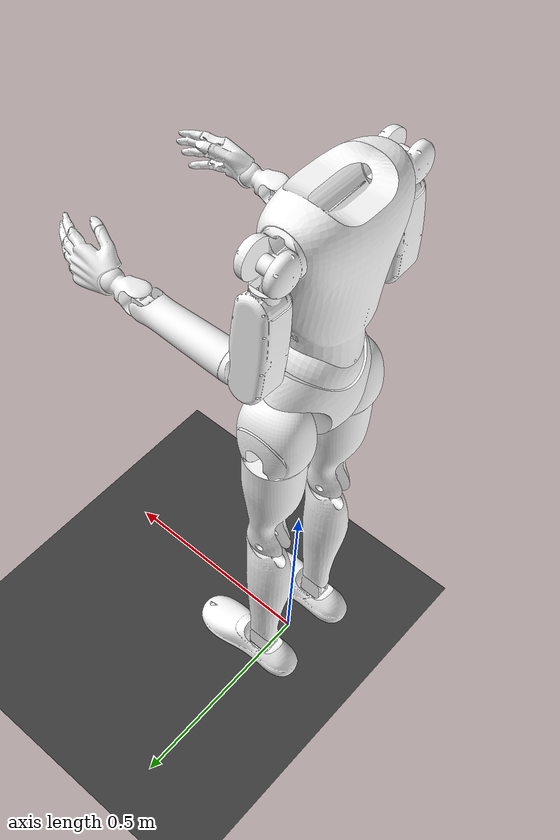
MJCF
<mujoco model="x3">
  <compiler angle="radian" meshdir="./meshes/"/>
  <statistic meansize="0.177939" extent="1.9618" center="0.0465088 1.93584e-06 -0.21519"/>
  <default>
    <joint damping="0.1" armature="0.01" frictionloss="0.1"/>
  </default>
  <asset>
    <texture type="skybox" builtin="gradient" width="128" height="128" rgb1="0.4 0.6 0.8" rgb2="0 0 0"/>
    <texture name="plane" type="2d" builtin="checker" rgb1="0.2 0.2 0.2" rgb2="0.3 0.3 0.3" width="512"
              height="512"/>
    <material name="plane" reflectance="0.0" texture="plane" texrepeat="1 1" texuniform="true"/>
    <mesh name="pelvis" file="pelvis.STL"/>
    <mesh name="left_hip_pitch_link" file="left_hip_pitch_link.STL"/>
    <mesh name="left_hip_roll_link" file="left_hip_roll_link.STL"/>
    <mesh name="left_hip_yaw_link" file="left_hip_yaw_link.STL"/>
    <mesh name="left_knee_link" file="left_knee_link.STL"/>
    <mesh name="left_ankle_pitch_link" file="left_ankle_pitch_link.STL"/>
    <mesh name="left_ankle_roll_link" file="left_ankle_roll_link.STL"/>
    <mesh name="right_hip_pitch_link" file="right_hip_pitch_link.STL"/>
    <mesh name="right_hip_roll_link" file="right_hip_roll_link.STL"/>
    <mesh name="right_hip_yaw_link" file="right_hip_yaw_link.STL"/>
    <mesh name="right_knee_link" file="right_knee_link.STL"/>
    <mesh name="right_ankle_pitch_link" file="right_ankle_pitch_link.STL"/>
    <mesh name="right_ankle_roll_link" file="right_ankle_roll_link.STL"/>
    <mesh name="waist_roll_link" file="waist_roll_link.STL"/>
    <mesh name="torso_link" file="torso_link.STL"/>
    <mesh name="left_shoulder_pitch_link" file="left_shoulder_pitch_link.STL"/>
    <mesh name="left_shoulder_roll_link" file="left_shoulder_roll_link.STL"/>
    <mesh name="left_shoulder_yaw_link" file="left_shoulder_yaw_link.STL"/>
    <mesh name="left_elbow_link" file="left_elbow_link.STL"/>
    <mesh name="left_wrist_roll_link" file="left_wrist_roll_link.STL"/>
    <mesh name="left_wrist_pitch_link" file="left_wrist_pitch_link.STL"/>
    <mesh name="left_wrist_yaw_link" file="left_wrist_yaw_link.STL"/>
    <mesh name="right_shoulder_pitch_link" file="right_shoulder_pitch_link.STL"/>
    <mesh name="right_shoulder_roll_link" file="right_shoulder_roll_link.STL"/>
    <mesh name="right_shoulder_yaw_link" file="right_shoulder_yaw_link.STL"/>
    <mesh name="right_elbow_link" file="right_elbow_link.STL"/>
    <mesh name="right_wrist_roll_link" file="right_wrist_roll_link.STL"/>
    <mesh name="right_wrist_pitch_link" file="right_wrist_pitch_link.STL"/>
    <mesh name="right_wrist_yaw_link" file="right_wrist_yaw_link.STL"/>
  </asset>

  <worldbody>
    <geom name="floor" pos="0.001 0 0" size="100 10 .125" type="plane" material="plane" condim="3"
          conaffinity="15" friction="0.6 0.6 0.001"/>
    <light mode="trackcom" pos="0 0 5" dir="0 0 -1"/>
    <body name="pelvis" pos="0 0 0.893">
      <inertial pos="0 0 0.115776" quat="0.706889 2.91347e-06 -1.28611e-05 0.707324" mass="3.65" diaginertia="0.0190501 0.0184655 0.0127755"/>
      <joint name="floating_base_joint" type="free" limited="false" actuatorfrclimited="false"/>
      <geom type="mesh" contype="0" conaffinity="0" group="1" density="0" rgba="1 1 1 1" mesh="pelvis"/>
      <geom type="mesh" rgba="1 1 1 1" mesh="pelvis"/>
      <body name="left_hip_pitch_link" pos="0 0.056998 0.044">
        <inertial pos="-7.014e-05 0.0416974 -0.0205686" quat="0.707107 0 0 0.707107" mass="2.167" diaginertia="0.00797221 0.00622358 0.00524355"/>
        <joint name="left_hip_pitch_joint" pos="0 0 0" axis="0 1 0" range="-2.3562 2.3562" actuatorfrcrange="-75 75"/>
        <geom type="mesh" contype="0" conaffinity="0" group="1" density="0" rgba="1 1 1 1" mesh="left_hip_pitch_link"/>
        <geom type="mesh" rgba="1 1 1 1" mesh="left_hip_pitch_link"/>
        <body name="left_hip_roll_link" pos="0 0.040491 -0.044">
          <inertial pos="0 0 -0.0331391" quat="0.5 0.5 -0.5 0.5" mass="0.05" diaginertia="5.63e-06 4.48e-06 4.48e-06"/>
          <joint name="left_hip_roll_joint" pos="0 0 0" axis="1 0 0" range="-0.5236 1.6581" actuatorfrcrange="-140.2 140.2"/>
          <geom type="mesh" contype="0" conaffinity="0" group="1" density="0" rgba="1 1 1 1" mesh="left_hip_roll_link"/>
          <geom type="mesh" rgba="1 1 1 1" mesh="left_hip_roll_link"/>
          <body name="left_hip_yaw_link">
            <inertial pos="0.00240937 0 -0.17118" quat="0.713733 0.0149082 0.0152113 0.700094" mass="2.4" diaginertia="0.0159371 0.015934 0.00374552"/>
            <joint name="left_hip_yaw_joint" pos="0 0 0" axis="0 0 1" range="-1.9199 3.1416" actuatorfrcrange="-88.2 88.2"/>
            <geom type="mesh" contype="0" conaffinity="0" group="1" density="0" rgba="1 1 1 1" mesh="left_hip_yaw_link"/>
            <body name="left_knee_link" pos="0 0 -0.339">
              <inertial pos="0.00029886 0 -0.210705" quat="0.707071 -0.00708323 -0.00708323 0.707071" mass="1.5" diaginertia="0.0162746 0.0159095 0.00146519"/>
              <joint name="left_knee_joint" pos="0 0 0" axis="0 1 0" range="0 2.3562" actuatorfrcrange="-140.2 140.2"/>
              <geom type="mesh" contype="0" conaffinity="0" group="1" density="0" rgba="1 1 1 1" mesh="left_knee_link"/>
              <geom type="mesh" rgba="1 1 1 1" mesh="left_knee_link"/>
              <body name="left_ankle_pitch_link" pos="0 0 -0.45">
                <inertial pos="0.00046495 0 -0.0356267" quat="0.707107 0 0 0.707107" mass="0.5" diaginertia="0.00048777 0.00043979 0.00019678"/>
                <joint name="left_ankle_pitch_joint" pos="0 0 0" axis="0 1 0" range="-1.0472 1.0472" actuatorfrcrange="-50.6 50.6"/>
                <geom type="mesh" contype="0" conaffinity="0" group="1" density="0" rgba="1 1 1 1" mesh="left_ankle_pitch_link"/>
                <geom type="mesh" rgba="1 1 1 1" mesh="left_ankle_pitch_link"/>
                <body name="left_ankle_roll_link" pos="0 0 -0.058">
                  <inertial pos="0.0527895 -8e-06 -0.0124553" quat="0.000151237 0.694503 0.000124693 0.719489" mass="1" diaginertia="0.00650771 0.00629204 0.000969317"/>
                  <joint name="left_ankle_roll_joint" pos="0 0 0" axis="1 0 0" range="-0.5236 0.5236" actuatorfrcrange="-50 50"/>
                  <geom type="mesh" contype="0" conaffinity="0" group="1" density="0" rgba="1 1 1 1" mesh="left_ankle_roll_link"/>
                  <geom size="0.005" pos="-0.085 0 -0.036" rgba="1 1 1 1"/>
                  <geom size="0.005" pos="-0.035 0.034 -0.036" rgba="1 1 1 1"/>
                  <geom size="0.005" pos="-0.035 -0.034 -0.036" rgba="1 1 1 1"/>
                  <geom size="0.005" pos="0.12 0.045 -0.036" rgba="1 1 1 1"/>
                  <geom size="0.005" pos="0.12 -0.045 -0.036" rgba="1 1 1 1"/>
                  <geom size="0.005" pos="0.18 0 -0.036" rgba="1 1 1 1"/>
                  <geom size="0.01 0.05" pos="0.08 -0.026 -0.024" quat="0.707105 0 0.707108 0" type="cylinder" rgba="1 1 1 1"/>
                  <geom size="0.01 0.1" pos="0.044 -0.018 -0.024" quat="0.707105 0 -0.707108 0" type="cylinder" rgba="1 1 1 1"/>
                  <geom size="0.01 0.12" pos="0.046 -0.01 -0.024" quat="0.707105 0 -0.707108 0" type="cylinder" rgba="1 1 1 1"/>
                  <geom size="0.01 0.125" pos="0.048 0 -0.024" quat="0.707105 0 -0.707108 0" type="cylinder" rgba="1 1 1 1"/>
                  <geom size="0.01 0.12" pos="0.046 0.01 -0.024" quat="0.707105 0 -0.707108 0" type="cylinder" rgba="1 1 1 1"/>
                  <geom size="0.01 0.1" pos="0.044 0.018 -0.024" quat="0.707105 0 -0.707108 0" type="cylinder" rgba="1 1 1 1"/>
                  <geom size="0.01 0.05" pos="0.08 0.026 -0.024" quat="0.707105 0 0.707108 0" type="cylinder" rgba="1 1 1 1"/>
                </body>
              </body>
            </body>
          </body>
        </body>
      </body>
      <body name="right_hip_pitch_link" pos="0 -0.056998 0.044">
        <inertial pos="-7.014e-05 -0.0416974 -0.0205686" quat="0.707107 0 0 0.707107" mass="2.167" diaginertia="0.00797221 0.00622358 0.00524355"/>
        <joint name="right_hip_pitch_joint" pos="0 0 0" axis="0 1 0" range="-2.3562 2.3562" actuatorfrcrange="-88 88"/>
        <geom type="mesh" contype="0" conaffinity="0" group="1" density="0" rgba="1 1 1 1" mesh="right_hip_pitch_link"/>
        <geom type="mesh" rgba="1 1 1 1" mesh="right_hip_pitch_link"/>
        <body name="right_hip_roll_link" pos="0 -0.040491 -0.044">
          <inertial pos="0 0 -0.0331391" quat="0.5 0.5 -0.5 0.5" mass="0.05" diaginertia="5.63e-06 4.48e-06 4.48e-06"/>
          <joint name="right_hip_roll_joint" pos="0 0 0" axis="1 0 0" range="-1.6581 0.5236" actuatorfrcrange="-140.2 140.2"/>
          <geom type="mesh" contype="0" conaffinity="0" group="1" density="0" rgba="1 1 1 1" mesh="right_hip_roll_link"/>
          <geom type="mesh" rgba="1 1 1 1" mesh="right_hip_roll_link"/>
          <body name="right_hip_yaw_link">
            <inertial pos="0.00240937 0 -0.17118" quat="0.713733 0.0149082 0.0152113 0.700094" mass="2.4" diaginertia="0.0159371 0.015934 0.00374552"/>
            <joint name="right_hip_yaw_joint" pos="0 0 0" axis="0 0 1" range="-3.1416 1.9199" actuatorfrcrange="-88.2 88.2"/>
            <geom type="mesh" contype="0" conaffinity="0" group="1" density="0" rgba="1 1 1 1" mesh="right_hip_yaw_link"/>
            <body name="right_knee_link" pos="0 0 -0.339">
              <inertial pos="0.00029886 0 -0.210705" quat="0.707071 -0.00708323 -0.00708323 0.707071" mass="1.5" diaginertia="0.0162746 0.0159095 0.00146519"/>
              <joint name="right_knee_joint" pos="0 0 0" axis="0 1 0" range="0 2.3562" actuatorfrcrange="-140.2 140.2"/>
              <geom type="mesh" contype="0" conaffinity="0" group="1" density="0" rgba="1 1 1 1" mesh="right_knee_link"/>
              <geom type="mesh" rgba="1 1 1 1" mesh="right_knee_link"/>
              <body name="right_ankle_pitch_link" pos="0 0 -0.45">
                <inertial pos="0.00046495 0 -0.0356267" quat="0.707107 0 0 0.707107" mass="0.5" diaginertia="0.00048777 0.00043979 0.00019678"/>
                <joint name="right_ankle_pitch_joint" pos="0 0 0" axis="0 1 0" range="-1.0472 1.0472" actuatorfrcrange="-50.6 50.6"/>
                <geom type="mesh" contype="0" conaffinity="0" group="1" density="0" rgba="1 1 1 1" mesh="right_ankle_pitch_link"/>
                <geom type="mesh" rgba="1 1 1 1" mesh="right_ankle_pitch_link"/>
                <body name="right_ankle_roll_link" pos="0 0 -0.058">
                  <inertial pos="0.0527895 -8e-06 -0.0124553" quat="0.000151237 0.694503 0.000124693 0.719489" mass="1" diaginertia="0.00650771 0.00629204 0.000969317"/>
                  <joint name="right_ankle_roll_joint" pos="0 0 0" axis="1 0 0" range="-0.5236 0.5236" actuatorfrcrange="-50 50"/>
                  <geom type="mesh" contype="0" conaffinity="0" group="1" density="0" rgba="1 1 1 1" mesh="right_ankle_roll_link"/>
                  <geom size="0.005" pos="-0.085 0 -0.036" rgba="1 1 1 1"/>
                  <geom size="0.005" pos="-0.035 0.034 -0.036" rgba="1 1 1 1"/>
                  <geom size="0.005" pos="-0.035 -0.034 -0.036" rgba="1 1 1 1"/>
                  <geom size="0.005" pos="0.12 0.045 -0.036" rgba="1 1 1 1"/>
                  <geom size="0.005" pos="0.12 -0.045 -0.036" rgba="1 1 1 1"/>
                  <geom size="0.005" pos="0.18 0 -0.036" rgba="1 1 1 1"/>
                  <geom size="0.01 0.05" pos="0.08 -0.026 -0.024" quat="0.707105 0 0.707108 0" type="cylinder" rgba="1 1 1 1"/>
                  <geom size="0.01 0.1" pos="0.044 -0.018 -0.024" quat="0.707105 0 -0.707108 0" type="cylinder" rgba="1 1 1 1"/>
                  <geom size="0.01 0.12" pos="0.046 -0.01 -0.024" quat="0.707105 0 -0.707108 0" type="cylinder" rgba="1 1 1 1"/>
                  <geom size="0.01 0.125" pos="0.048 0 -0.024" quat="0.707105 0 -0.707108 0" type="cylinder" rgba="1 1 1 1"/>
                  <geom size="0.01 0.12" pos="0.046 0.01 -0.024" quat="0.707105 0 -0.707108 0" type="cylinder" rgba="1 1 1 1"/>
                  <geom size="0.01 0.1" pos="0.044 0.018 -0.024" quat="0.707105 0 -0.707108 0" type="cylinder" rgba="1 1 1 1"/>
                  <geom size="0.01 0.05" pos="0.08 0.026 -0.024" quat="0.707105 0 0.707108 0" type="cylinder" rgba="1 1 1 1"/>
                </body>
              </body>
            </body>
          </body>
        </body>
      </body>
      <body name="waist_roll_link" pos="0 0 0.1945">
        <inertial pos="0 0 0" mass="0.05" diaginertia="5.63e-06 4.48e-06 4.48e-06"/>
        <joint name="waist_roll_joint" pos="0 0 0" axis="1 0 0" range="-0.3491 0.3491" actuatorfrcrange="-60.2 60.2"/>
        <geom type="mesh" contype="0" conaffinity="0" group="1" density="0" rgba="1 1 1 1" mesh="waist_roll_link"/>
        <body name="torso_link">
          <inertial pos="-0.00239171 -3.74e-06 0.179632" quat="0.99958 -1.89996e-05 0.0289681 2.12082e-05" mass="3" diaginertia="0.027699 0.0252883 0.0167502"/>
          <joint name="waist_yaw_joint" pos="0 0 0" axis="0 0 1" range="-1.8326 1.8326" actuatorfrcrange="-60.2 60.2"/>
          <geom type="mesh" contype="0" conaffinity="0" group="1" density="0" rgba="1 1 1 1" mesh="torso_link"/>
          <body name="left_shoulder_pitch_link" pos="-0.012293 0.12327 0.2885">
            <inertial pos="1.04e-06 0.0255119 0" quat="3.0798e-05 0.707075 -3.25061e-05 0.707138" mass="1.22" diaginertia="0.00148131 0.00148057 0.00125717"/>
            <joint name="left_shoulder_pitch_joint" pos="0 0 0" axis="0 1 0" range="-3.1416 1.5708" actuatorfrcrange="-50 50"/>
            <geom type="mesh" contype="0" conaffinity="0" group="1" density="0" rgba="1 1 1 1" mesh="left_shoulder_pitch_link"/>
            <geom type="mesh" rgba="1 1 1 1" mesh="left_shoulder_pitch_link"/>
            <body name="left_shoulder_roll_link" pos="0 0.033483 0" quat="0.999048 0.0436192 0 0">
              <inertial pos="0 0 0" mass="0.05" diaginertia="5.63e-06 4.48e-06 4.48e-06"/>
              <joint name="left_shoulder_roll_joint" pos="0 0 0" axis="1 0 0" range="0 3.0543" actuatorfrcrange="-50.6 50.6"/>
              <geom type="mesh" contype="0" conaffinity="0" group="1" density="0" rgba="1 1 1 1" mesh="left_shoulder_roll_link"/>
              <geom type="mesh" rgba="1 1 1 1" mesh="left_shoulder_roll_link"/>
              <body name="left_shoulder_yaw_link">
                <inertial pos="-0.00272365 -1.49e-06 -0.13946" quat="0.706745 -0.0224177 -0.0224085 0.706758" mass="1.5" diaginertia="0.00652221 0.00631223 0.00168329"/>
                <joint name="left_shoulder_yaw_joint" pos="0 0 0" axis="0 0 1" range="-2.0071 2.0071" actuatorfrcrange="-50.6 50.6"/>
                <geom type="mesh" contype="0" conaffinity="0" group="1" density="0" rgba="1 1 1 1" mesh="left_shoulder_yaw_link"/>
                <body name="left_elbow_link" pos="0 0 -0.23">
                  <inertial pos="0.01482 -1.87e-06 0.00294173" quat="0.701788 -0.083142 -0.0834852 0.702575" mass="0.5" diaginertia="0.00029095 0.000274622 0.000267458"/>
                  <joint name="left_elbow_joint" pos="0 0 0" axis="0 1 0" range="-0.4363 1.5708" actuatorfrcrange="-50.8 50.8"/>
                  <geom type="mesh" contype="0" conaffinity="0" group="1" density="0" rgba="1 1 1 1" mesh="left_elbow_link"/>
                  <geom type="mesh" rgba="1 1 1 1" mesh="left_elbow_link"/>
                  <body name="left_wrist_roll_link">
                    <inertial pos="0.130726 0 -2.867e-05" quat="0 0.706882 0 0.707332" mass="0.85" diaginertia="0.0023166 0.00228248 0.000430139"/>
                    <joint name="left_wrist_roll_joint" pos="0 0 0" axis="1 0 0" range="-2.0071 2.0071" actuatorfrcrange="-20.8 20.8"/>
                    <geom type="mesh" contype="0" conaffinity="0" group="1" density="0" rgba="1 1 1 1" mesh="left_wrist_roll_link"/>
                    <geom type="mesh" rgba="1 1 1 1" mesh="left_wrist_roll_link"/>
                    <body name="left_wrist_pitch_link" pos="0.235 0 0">
                      <inertial pos="0.0125817 0 0" quat="0 0.707107 0 0.707107" mass="0.05" diaginertia="9.1e-06 7.46e-06 4.12e-06"/>
                      <joint name="left_wrist_pitch_joint" pos="0 0 0" axis="0 1 0" range="-0.6981 0.6981" actuatorfrcrange="-20.8 20.8"/>
                      <geom type="mesh" contype="0" conaffinity="0" group="1" density="0" rgba="1 1 1 1" mesh="left_wrist_pitch_link"/>
                      <geom type="mesh" rgba="1 1 1 1" mesh="left_wrist_pitch_link"/>
                      <body name="left_wrist_yaw_link" pos="0.0215 0 0">
                        <inertial pos="0.0503439 -0.00067096 0.00221444" quat="0.530369 0.443563 0.580768 0.429733" mass="0.055" diaginertia="0.000163965 0.000149826 2.98683e-05"/>
                        <joint name="left_wrist_yaw_joint" pos="0 0 0" axis="0 0 1" range="-0.8727 0.8727" actuatorfrcrange="-20.4 20.4"/>
                        <geom type="mesh" contype="0" conaffinity="0" group="1" density="0" rgba="1 1 1 1" mesh="left_wrist_yaw_link"/>
                      </body>
                    </body>
                  </body>
                </body>
              </body>
            </body>
          </body>
          <body name="right_shoulder_pitch_link" pos="-0.012293 -0.12327 0.2885">
            <inertial pos="1.04e-06 0.0255119 0" quat="3.0798e-05 0.707075 -3.25061e-05 0.707138" mass="1.22" diaginertia="0.00148131 0.00148057 0.00125717"/>
            <joint name="right_shoulder_pitch_joint" pos="0 0 0" axis="0 1 0" range="-3.1416 1.5708" actuatorfrcrange="-50 50"/>
            <geom type="mesh" contype="0" conaffinity="0" group="1" density="0" rgba="1 1 1 1" mesh="right_shoulder_pitch_link"/>
            <geom type="mesh" rgba="1 1 1 1" mesh="right_shoulder_pitch_link"/>
            <body name="right_shoulder_roll_link" pos="0 -0.033479 0" quat="0.999048 -0.0436192 0 0">
              <inertial pos="0 0 0" mass="0.05" diaginertia="5.63e-06 4.48e-06 4.48e-06"/>
              <joint name="right_shoulder_roll_joint" pos="0 0 0" axis="1 0 0" range="-3.0543 0" actuatorfrcrange="-22.6 22.6"/>
              <geom type="mesh" contype="0" conaffinity="0" group="1" density="0" rgba="1 1 1 1" mesh="right_shoulder_roll_link"/>
              <geom type="mesh" rgba="1 1 1 1" mesh="right_shoulder_roll_link"/>
              <body name="right_shoulder_yaw_link">
                <inertial pos="-0.00272365 -1.49e-06 -0.13946" quat="0.706745 -0.0224177 -0.0224085 0.706758" mass="1.5" diaginertia="0.00652221 0.00631223 0.00168329"/>
                <joint name="right_shoulder_yaw_joint" pos="0 0 0" axis="0 0 1" range="-2.0071 2.0071" actuatorfrcrange="-22.6 22.6"/>
                <geom type="mesh" contype="0" conaffinity="0" group="1" density="0" rgba="1 1 1 1" mesh="right_shoulder_yaw_link"/>
                <body name="right_elbow_link" pos="0 0 -0.23">
                  <inertial pos="0.01482 -1.87e-06 0.00294173" quat="0.701788 -0.083142 -0.0834852 0.702575" mass="0.5" diaginertia="0.00029095 0.000274622 0.000267458"/>
                  <joint name="right_elbow_joint" pos="0 0 0" axis="0 1 0" range="-0.4363 1.5708" actuatorfrcrange="-18.8 18.8"/>
                  <geom type="mesh" contype="0" conaffinity="0" group="1" density="0" rgba="1 1 1 1" mesh="right_elbow_link"/>
                  <geom type="mesh" rgba="1 1 1 1" mesh="right_elbow_link"/>
                  <body name="right_wrist_roll_link">
                    <inertial pos="0.130726 0 -2.867e-05" quat="0 0.706882 0 0.707332" mass="0.85" diaginertia="0.0023166 0.00228248 0.000430139"/>
                    <joint name="right_wrist_roll_joint" pos="0 0 0" axis="1 0 0" range="-2.0071 2.0071" actuatorfrcrange="-18.8 18.8"/>
                    <geom type="mesh" contype="0" conaffinity="0" group="1" density="0" rgba="1 1 1 1" mesh="right_wrist_roll_link"/>
                    <geom type="mesh" rgba="1 1 1 1" mesh="right_wrist_roll_link"/>
                    <body name="right_wrist_pitch_link" pos="0.235 0 0">
                      <inertial pos="0.0125817 0 0" quat="0 0.707107 0 0.707107" mass="0.05" diaginertia="9.1e-06 7.46e-06 4.12e-06"/>
                      <joint name="right_wrist_pitch_joint" pos="0 0 0" axis="0 1 0" range="-0.6981 0.6981" actuatorfrcrange="-20.8 20.8"/>
                      <geom type="mesh" contype="0" conaffinity="0" group="1" density="0" rgba="1 1 1 1" mesh="right_wrist_pitch_link"/>
                      <geom type="mesh" rgba="1 1 1 1" mesh="right_wrist_pitch_link"/>
                      <body name="right_wrist_yaw_link" pos="0.0215 0 0">
                        <inertial pos="0.0503439 -0.00067096 0.00221444" quat="0.530369 0.443563 0.580768 0.429733" mass="0.055" diaginertia="0.000163965 0.000149826 2.98683e-05"/>
                        <joint name="right_wrist_yaw_joint" pos="0 0 0" axis="0 0 1" range="-0.8727 0.8727" actuatorfrcrange="-20.4 20.4"/>
                        <geom type="mesh" contype="0" conaffinity="0" group="1" density="0" rgba="1 1 1 1" mesh="right_wrist_yaw_link"/>
                      </body>
                    </body>
                  </body>
                </body>
              </body>
            </body>
          </body>
        </body>
      </body>
    </body>
  </worldbody>

  <actuator>
    <motor name="left_hip_pitch_joint" joint="left_hip_pitch_joint"/>
    <motor name="left_hip_roll_joint" joint="left_hip_roll_joint"/>
    <motor name="left_hip_yaw_joint" joint="left_hip_yaw_joint"/>
    <motor name="left_knee_joint" joint="left_knee_joint"/>
    <motor name="left_ankle_pitch_joint" joint="left_ankle_pitch_joint"/>
    <motor name="left_ankle_roll_joint" joint="left_ankle_roll_joint"/>
    <motor name="right_hip_pitch_joint" joint="right_hip_pitch_joint"/>
    <motor name="right_hip_roll_joint" joint="right_hip_roll_joint"/>
    <motor name="right_hip_yaw_joint" joint="right_hip_yaw_joint"/>
    <motor name="right_knee_joint" joint="right_knee_joint"/>
    <motor name="right_ankle_pitch_joint" joint="right_ankle_pitch_joint"/>
    <motor name="right_ankle_roll_joint" joint="right_ankle_roll_joint"/>
    <motor name="waist_roll_joint" joint="waist_roll_joint"/>
    <motor name="waist_yaw_joint" joint="waist_yaw_joint"/>
    <motor name="left_shoulder_pitch_joint" joint="left_shoulder_pitch_joint"/>
    <motor name="left_shoulder_roll_joint" joint="left_shoulder_roll_joint"/>
    <motor name="left_shoulder_yaw_joint" joint="left_shoulder_yaw_joint"/>
    <motor name="left_elbow_joint" joint="left_elbow_joint"/>
    <motor name="left_wrist_roll_joint" joint="left_wrist_roll_joint"/>
    <motor name="left_wrist_pitch_joint" joint="left_wrist_pitch_joint"/>
    <motor name="left_wrist_yaw_joint" joint="left_wrist_yaw_joint"/>
    <motor name="right_shoulder_pitch_joint" joint="right_shoulder_pitch_joint"/>
    <motor name="right_shoulder_roll_joint" joint="right_shoulder_roll_joint"/>
    <motor name="right_shoulder_yaw_joint" joint="right_shoulder_yaw_joint"/>
    <motor name="right_elbow_joint" joint="right_elbow_joint"/>
    <motor name="right_wrist_roll_joint" joint="right_wrist_roll_joint"/>
    <motor name="right_wrist_pitch_joint" joint="right_wrist_pitch_joint"/>
    <motor name="right_wrist_yaw_joint" joint="right_wrist_yaw_joint"/>
  </actuator>

</mujoco>
